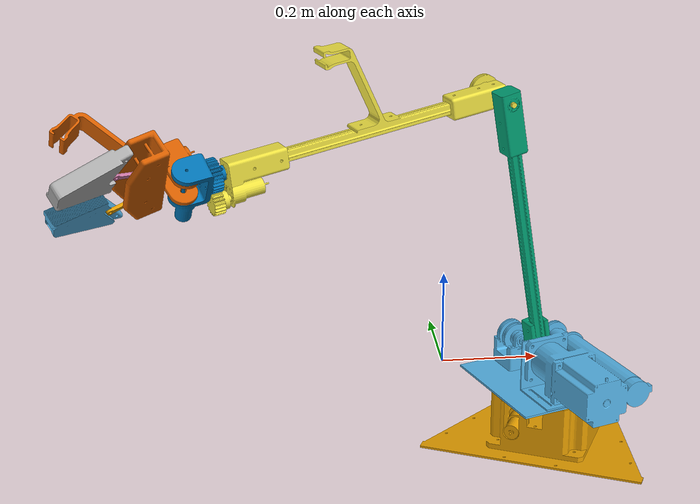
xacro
<?xml version="1.0"?>
<robot xmlns:xacro="http://www.ros.org/wiki/xacro" name="leg_assembly">

  <xacro:arg name="initial_positions_file" default="initial_positions.yaml" />

  <!-- Base robot -->
  <xacro:include filename="$(find leg_assembly)/urdf/leg_assembly_gpt.urdf"/>

  <!-- ros2_control (Gazebo) -->
  <xacro:include
    filename="$(find leg_assembly_moveit_config)/config/arm_hardware_ros2_control.xacro"/>
  <xacro:arm_hardware_ros2_control
    name="ARMHARDWARE"
    initial_positions_file="$(arg initial_positions_file)"/>

</robot>

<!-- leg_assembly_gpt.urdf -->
<robot name="leg_assembly">

  <!-- ================= BASE ================= -->

  <link name="base_link">
    <inertial>
      <origin xyz="0 0 0"/>
      <mass value="3.0"/>
      <inertia ixx="0.05" iyy="0.05" izz="0.05" ixy="0" ixz="0" iyz="0"/>
    </inertial>
    <visual>
      <geometry>
        <mesh filename="file://$(find leg_assembly)/meshes/base_link.STL"/>
      </geometry>
    </visual>
    <collision>
      <geometry>
        <mesh filename="file://$(find leg_assembly)/meshes/base_link.STL"/>
      </geometry>
    </collision>
  </link>

  <!-- ================= LINK 1 ================= -->

  <link name="link_1">
    <inertial>
      <origin xyz="0 0 0"/>
      <mass value="2.5"/>
      <inertia ixx="0.04" iyy="0.04" izz="0.04" ixy="0" ixz="0" iyz="0"/>
    </inertial>
    <visual>
      <geometry>
        <mesh filename="file://$(find leg_assembly)/meshes/link_1.STL"/>
      </geometry>
    </visual>
    <collision>
      <geometry>
        <mesh filename="file://$(find leg_assembly)/meshes/link_1.STL"/>
      </geometry>
    </collision>
  </link>

  <joint name="base_joint" type="continuous">
    <parent link="base_link"/>
    <child link="link_1"/>
    <origin xyz="0.150594316389524 -0.347863951717185 0.102099344613531"
            rpy="1.5707963267949 0 1.92899218657778"/>
    <axis xyz="0 1 0"/>
    <dynamics damping="6.0" friction="1.5"/>
  </joint>

  <!-- ================= LINK 2 ================= -->

  <link name="link_2">
    <inertial>
      <origin xyz="0 0 0"/>
      <mass value="2.0"/>
      <inertia ixx="0.035" iyy="0.035" izz="0.035" ixy="0" ixz="0" iyz="0"/>
    </inertial>
    <visual>
      <geometry>
        <mesh filename="file://$(find leg_assembly)/meshes/link_2.STL"/>
      </geometry>
    </visual>
    <collision>
      <geometry>
        <mesh filename="file://$(find leg_assembly)/meshes/link_2.STL"/>
      </geometry>
    </collision>
  </link>

  <joint name="shoulder_joint" type="continuous">
    <parent link="link_1"/>
    <child link="link_2"/>
    <origin xyz="0 0.083 -0.025" rpy="-0.769347148250491 0 0"/>
    <axis xyz="1 0 0"/>
    <dynamics damping="6.0" friction="1.5"/>
  </joint>

  <!-- ================= LINK 3 ================= -->

  <link name="link_3">
    <inertial>
      <origin xyz="0 0 0"/>
      <mass value="0.8"/>
      <inertia ixx="0.015" iyy="0.015" izz="0.015" ixy="0" ixz="0" iyz="0"/>
    </inertial>
    <visual>
      <geometry>
        <mesh filename="file://$(find leg_assembly)/meshes/link_3.STL"/>
      </geometry>
    </visual>
    <collision>
      <geometry>
        <mesh filename="file://$(find leg_assembly)/meshes/link_3.STL"/>
      </geometry>
    </collision>
  </link>

  <joint name="elbow_joint" type="continuous">
    <parent link="link_2"/>
    <child link="link_3"/>
    <origin xyz="0 0.433165678176262 0.292848996327625"
            rpy="1.03040234769901 0 0"/>
    <axis xyz="1 0 0"/>
    <dynamics damping="6.0" friction="1.5"/>
  </joint>

  <!-- ================= LINK 4 ================= -->

  <link name="link_4">
    <inertial>
      <origin xyz="0 0 0"/>
      <mass value="1.5"/>
      <inertia ixx="0.025" iyy="0.025" izz="0.025" ixy="0" ixz="0" iyz="0"/>
    </inertial>
    <visual>
      <geometry>
        <mesh filename="file://$(find leg_assembly)/meshes/link_4.STL"/>
      </geometry>
    </visual>
    <collision>
      <geometry>
        <mesh filename="file://$(find leg_assembly)/meshes/link_4.STL"/>
      </geometry>
    </collision>
  </link>

  <joint name="wrist_roll" type="continuous">
    <parent link="link_3"/>
    <child link="link_4"/>
    <origin xyz="0.035 -0.198 -0.495"
            rpy="-0.276225881664695 -0.304270113720173 -0.900391226843565"/>
    <axis xyz="0 0.0429812476264269 -0.99907587917659"/>
    <dynamics damping="4.0" friction="1.0"/>
  </joint>

  <!-- ================= END EFFECTOR ================= -->

  <link name="end_effector">
    <inertial>
      <origin xyz="0 0 0"/>
      <mass value="0.4"/>
      <inertia ixx="0.008" iyy="0.008" izz="0.008" ixy="0" ixz="0" iyz="0"/>
    </inertial>
    <visual>
      <geometry>
        <mesh filename="file://$(find leg_assembly)/meshes/end_effector.STL"/>
      </geometry>
    </visual>
    <collision>
      <geometry>
        <mesh filename="file://$(find leg_assembly)/meshes/end_effector.STL"/>
      </geometry>
    </collision>
  </link>

  <joint name="wrist_pitch" type="continuous">
    <parent link="link_4"/>
    <child link="end_effector"/>
    <origin xyz="0 0.0021491 -0.049954" rpy="0.29533 0 0"/>
    <axis xyz="1 0 0"/>
    <dynamics damping="4.0" friction="1.0"/>
  </joint>

  <!-- ================= FINGERS ================= -->

  <link name="finger_link_left">
    <inertial>
      <origin xyz="0 0 0"/>
      <mass value="0.05"/>
      <inertia ixx="0.001" iyy="0.001" izz="0.001" ixy="0" ixz="0" iyz="0"/>
    </inertial>
    <visual>
      <geometry>
        <mesh filename="file://$(find leg_assembly)/meshes/finger_link_left.STL"/>
      </geometry>
    </visual>
    <collision>
      <geometry>
        <mesh filename="file://$(find leg_assembly)/meshes/finger_link_left.STL"/>
      </geometry>
    </collision>
  </link>

  <joint name="finger_joint_left" type="continuous">
    <parent link="end_effector"/>
    <child link="finger_link_left"/>
    <origin xyz="-0.035 -0.025212 -0.072525"
            rpy="-2.72838699915497 -0.386039781368848 2.97798281371752"/>
    <axis xyz="0 1 0"/>
    <dynamics damping="10.0" friction="2.0"/>

  </joint>

  <link name="finger_tip_left">
    <inertial>
      <origin xyz="0 0 0"/>
      <mass value="0.05"/>
      <inertia ixx="0.001" iyy="0.001" izz="0.001" ixy="0" ixz="0" iyz="0"/>
    </inertial>
    <visual>
      <geometry>
        <mesh filename="file://$(find leg_assembly)/meshes/finger_tip_left.STL"/>
      </geometry>
    </visual>
    <collision>
      <geometry>
        <mesh filename="file://$(find leg_assembly)/meshes/finger_tip_left.STL"/>
      </geometry>
    </collision>
  </link>

  <joint name="finger_j1" type="continuous">
    <parent link="finger_link_left"/>
    <child link="finger_tip_left"/>
    <origin xyz="0 0 0.06"
            rpy="-2.81843607467865 -0.292711741710647 -3.14159265358978"/>
    <axis xyz="0 0.948237736477631 -0.317561324974845"/>
    <dynamics damping="10.0" friction="2.0"/>
  </joint>

  <link name="finger_link_right">
    <inertial>
      <origin xyz="0 0 0"/>
      <mass value="0.05"/>
      <inertia ixx="0.001" iyy="0.001" izz="0.001" ixy="0" ixz="0" iyz="0"/>
    </inertial>
    <visual>
      <geometry>
        <mesh filename="file://$(find leg_assembly)/meshes/finger_link_right.STL"/>
      </geometry>
    </visual>
    <collision>
      <geometry>
        <mesh filename="file://$(find leg_assembly)/meshes/finger_link_right.STL"/>
      </geometry>
    </collision>
  </link>

  <joint name="finger_joint_right" type="continuous">
    <parent link="end_effector"/>
    <child link="finger_link_right"/>
    <origin xyz="0.035 -0.018786 -0.075101"
            rpy="-2.7586 0.095478 -3.1032"/>
    <axis xyz="0 1 0"/>
    <mimic joint="finger_joint_left" multiplier="-1"/>
    <dynamics damping="10.0" friction="2.0"/>
  </joint>

  <link name="finger_tip_right">
    <inertial>
      <origin xyz="0 0 0"/>
      <mass value="0.05"/>
      <inertia ixx="0.001" iyy="0.001" izz="0.001" ixy="0" ixz="0" iyz="0"/>
    </inertial>
    <visual>
      <geometry>
        <mesh filename="file://$(find leg_assembly)/meshes/finger_tip_right.STL"/>
      </geometry>
    </visual>
    <collision>
      <geometry>
        <mesh filename="file://$(find leg_assembly)/meshes/finger_tip_right.STL"/>
      </geometry>
    </collision>
  </link>

  <joint name="finger_j2" type="continuous">
    <parent link="finger_link_right"/>
    <child link="finger_tip_right"/>
    <origin xyz="0 0 0.06"
            rpy="-2.8184 -0.8343 -3.1416"/>
    <axis xyz="0 0.94824 -0.31756"/>
    <mimic joint="finger_j1" multiplier="-1"/>
    <dynamics damping="10.0" friction="2.0"/>
  </joint>

</robot>
